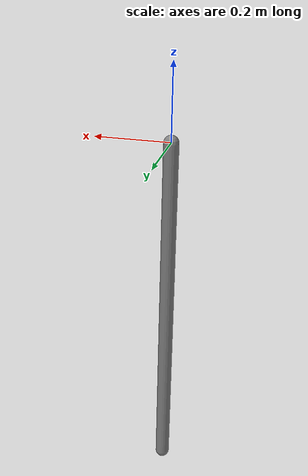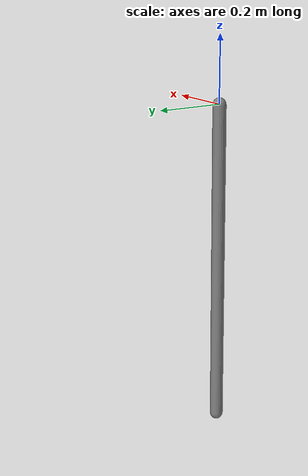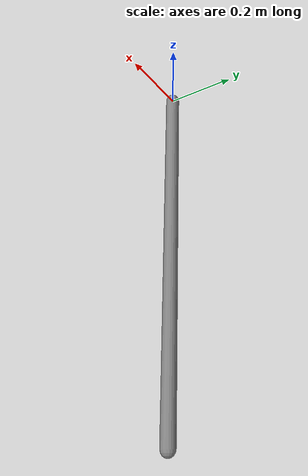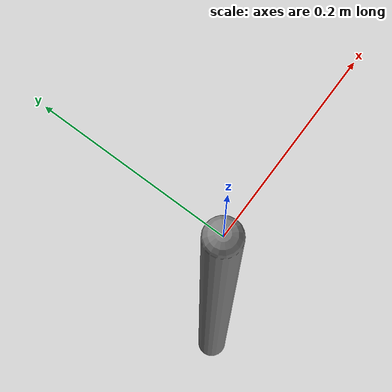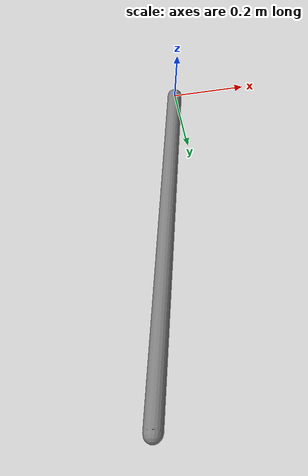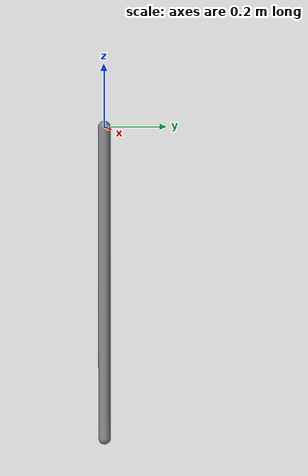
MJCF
<mujoco model="pendulum-sensors">
      <compiler angle="radian"/>
      <option gravity="0 0 -9.81" timestep="0.002"/>
      <worldbody>
        <body name="link" pos="0 0 0">
          <joint name="hinge" type="hinge" axis="0 1 0"/>
          <inertial pos="0 0 -0.5" mass="1.0" diaginertia="0.1 0.1 0.001"/>
          <geom type="capsule" size="0.02" fromto="0 0 0  0 0 -1" rgba="0.5 0.5 0.5 1"/>
        </body>
      </worldbody>
      <actuator>
        <motor name="torque" joint="hinge" gear="1"/>
      </actuator>
      <sensor>
        <jointpos name="pos" joint="hinge"/>
        <jointvel name="vel" joint="hinge"/>
      </sensor>
    </mujoco>
